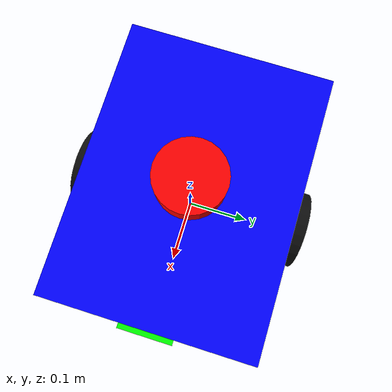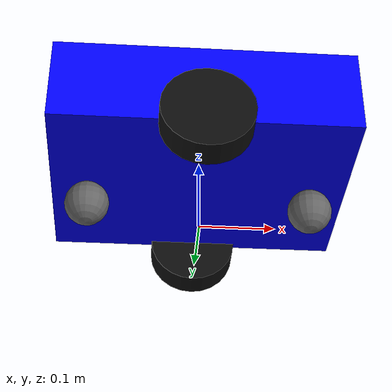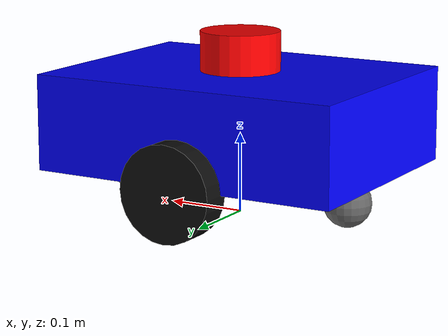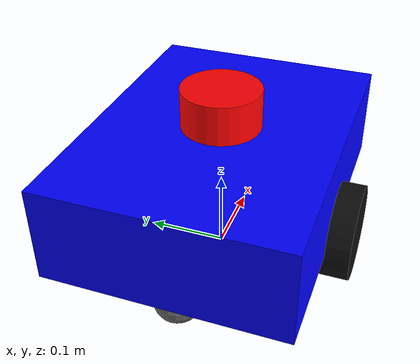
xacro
<?xml version="1.0"?>
<robot xmlns:xacro="http://www.ros.org/wiki/xacro" name="olive_bot">

  <!-- ============================ Properties ============================ -->
  <xacro:property name="chassis_length"  value="0.40"/>
  <xacro:property name="chassis_width"   value="0.30"/>
  <xacro:property name="chassis_height"  value="0.12"/>
  <xacro:property name="chassis_mass"    value="10.0"/>

  <xacro:property name="wheel_radius"    value="0.06"/>
  <xacro:property name="wheel_width"     value="0.04"/>
  <xacro:property name="wheel_mass"      value="0.5"/>
  <xacro:property name="wheel_offset_y"  value="0.16"/>   <!-- half of wheel_separation -->

  <xacro:property name="caster_radius"   value="0.03"/>
  <xacro:property name="caster_mass"     value="0.1"/>
  <xacro:property name="caster_offset_x" value="0.15"/>

  <!-- ============================ Base ============================ -->
  <!-- base_footprint sits on the ground; base_link is raised to wheel-axle height -->
  <link name="base_footprint"/>

  <joint name="base_joint" type="fixed">
    <parent link="base_footprint"/>
    <child link="base_link"/>
    <origin xyz="0 0 ${wheel_radius}" rpy="0 0 0"/>
  </joint>

  <link name="base_link">
    <visual>
      <origin xyz="0 0 ${chassis_height/2}" rpy="0 0 0"/>
      <geometry><box size="${chassis_length} ${chassis_width} ${chassis_height}"/></geometry>
      <material name="blue"><color rgba="0.0 0.0 1.0 1.0"/></material>
    </visual>
    <collision>
      <origin xyz="0 0 ${chassis_height/2}" rpy="0 0 0"/>
      <geometry><box size="${chassis_length} ${chassis_width} ${chassis_height}"/></geometry>
    </collision>
    <inertial>
      <origin xyz="0 0 ${chassis_height/2}" rpy="0 0 0"/>
      <mass value="${chassis_mass}"/>
      <inertia
        ixx="${chassis_mass/12.0*(chassis_width*chassis_width + chassis_height*chassis_height)}" ixy="0.0" ixz="0.0"
        iyy="${chassis_mass/12.0*(chassis_length*chassis_length + chassis_height*chassis_height)}" iyz="0.0"
        izz="${chassis_mass/12.0*(chassis_length*chassis_length + chassis_width*chassis_width)}"/>
    </inertial>
  </link>

  <!-- ============================ Drive wheels ============================ -->
  <xacro:macro name="drive_wheel" params="side reflect">
    <link name="${side}_wheel">
      <visual>
        <origin xyz="0 0 0" rpy="${pi/2} 0 0"/>
        <geometry><cylinder radius="${wheel_radius}" length="${wheel_width}"/></geometry>
        <material name="black"><color rgba="0.05 0.05 0.05 1.0"/></material>
      </visual>
      <collision>
        <origin xyz="0 0 0" rpy="${pi/2} 0 0"/>
        <geometry><cylinder radius="${wheel_radius}" length="${wheel_width}"/></geometry>
      </collision>
      <inertial>
        <origin xyz="0 0 0" rpy="${pi/2} 0 0"/>
        <mass value="${wheel_mass}"/>
        <inertia
          ixx="${wheel_mass/12.0*(3*wheel_radius*wheel_radius + wheel_width*wheel_width)}" ixy="0.0" ixz="0.0"
          iyy="${wheel_mass/12.0*(3*wheel_radius*wheel_radius + wheel_width*wheel_width)}" iyz="0.0"
          izz="${wheel_mass/2.0*wheel_radius*wheel_radius}"/>
      </inertial>
    </link>

    <joint name="${side}_wheel_joint" type="continuous">
      <parent link="base_link"/>
      <child link="${side}_wheel"/>
      <origin xyz="0 ${reflect*wheel_offset_y} 0" rpy="0 0 0"/>
      <axis xyz="0 1 0"/>
    </joint>
  </xacro:macro>

  <xacro:drive_wheel side="left"  reflect="1"/>
  <xacro:drive_wheel side="right" reflect="-1"/>

  <!-- ============================ Ball casters (frictionless) ============================ -->
  <xacro:macro name="caster" params="pos reflect">
    <link name="${pos}_caster">
      <visual>
        <origin xyz="0 0 0" rpy="0 0 0"/>
        <geometry><sphere radius="${caster_radius}"/></geometry>
        <material name="grey"><color rgba="0.4 0.4 0.4 1.0"/></material>
      </visual>
      <collision>
        <origin xyz="0 0 0" rpy="0 0 0"/>
        <geometry><sphere radius="${caster_radius}"/></geometry>
      </collision>
      <inertial>
        <mass value="${caster_mass}"/>
        <inertia ixx="${0.4*caster_mass*caster_radius*caster_radius}" ixy="0.0" ixz="0.0"
                 iyy="${0.4*caster_mass*caster_radius*caster_radius}" iyz="0.0"
                 izz="${0.4*caster_mass*caster_radius*caster_radius}"/>
      </inertial>
    </link>

    <joint name="${pos}_caster_joint" type="fixed">
      <parent link="base_link"/>
      <child link="${pos}_caster"/>
      <origin xyz="${reflect*caster_offset_x} 0 ${-(wheel_radius - caster_radius)}" rpy="0 0 0"/>
    </joint>
  </xacro:macro>

  <xacro:caster pos="front" reflect="1"/>
  <xacro:caster pos="rear"  reflect="-1"/>

  <!-- ============================ Sensor links ============================ -->
  <!-- IMU -->
  <link name="imu_link">
    <inertial>
      <mass value="0.01"/>
      <origin xyz="0 0 0" rpy="0 0 0"/>
      <inertia ixx="0.00001" ixy="0.0" ixz="0.0" iyy="0.00001" iyz="0.0" izz="0.00001"/>
    </inertial>
  </link>
  <joint name="imu_joint" type="fixed">
    <parent link="base_link"/>
    <child link="imu_link"/>
    <origin xyz="0 0 ${chassis_height/2}" rpy="0 0 0"/>
  </joint>

  <!-- 3D LiDAR (roof-mounted) -->
  <link name="lidar_link">
    <visual>
      <origin xyz="0 0 0" rpy="0 0 0"/>
      <geometry><cylinder radius="0.05" length="0.05"/></geometry>
      <material name="red"><color rgba="1.0 0.0 0.0 1.0"/></material>
    </visual>
    <collision>
      <origin xyz="0 0 0" rpy="0 0 0"/>
      <geometry><cylinder radius="0.05" length="0.05"/></geometry>
    </collision>
    <inertial>
      <mass value="0.1"/>
      <origin xyz="0 0 0" rpy="0 0 0"/>
      <inertia ixx="0.0001" ixy="0.0" ixz="0.0" iyy="0.0001" iyz="0.0" izz="0.0001"/>
    </inertial>
  </link>
  <joint name="lidar_joint" type="fixed">
    <parent link="base_link"/>
    <child link="lidar_link"/>
    <origin xyz="0 0 ${chassis_height + 0.025}" rpy="0 0 0"/>
  </joint>

  <!-- RGB camera (front-facing) -->
  <link name="camera_link">
    <visual>
      <origin xyz="0 0 0" rpy="0 0 0"/>
      <geometry><box size="0.03 0.08 0.03"/></geometry>
      <material name="green"><color rgba="0.0 1.0 0.0 1.0"/></material>
    </visual>
    <collision>
      <origin xyz="0 0 0" rpy="0 0 0"/>
      <geometry><box size="0.03 0.08 0.03"/></geometry>
    </collision>
    <inertial>
      <mass value="0.05"/>
      <origin xyz="0 0 0" rpy="0 0 0"/>
      <inertia ixx="0.00001" ixy="0.0" ixz="0.0" iyy="0.00001" iyz="0.0" izz="0.00001"/>
    </inertial>
  </link>
  <joint name="camera_joint" type="fixed">
    <parent link="base_link"/>
    <child link="camera_link"/>
    <origin xyz="${chassis_length/2} 0 ${chassis_height/2}" rpy="0 0 0"/>
  </joint>

  <!-- Camera optical frame (REP-103 optical convention: z forward, x right, y down) -->
  <link name="camera_optical_link"/>
  <joint name="camera_optical_joint" type="fixed">
    <parent link="camera_link"/>
    <child link="camera_optical_link"/>
    <origin xyz="0 0 0" rpy="${-pi/2} 0 ${-pi/2}"/>
  </joint>

  <!-- ===================== GAZEBO (HARMONIC) MATERIALS & FRICTION ===================== -->
  <gazebo reference="base_link">
    <material>
      <ambient>0.0 0.0 1.0 1.0</ambient>
      <diffuse>0.0 0.0 1.0 1.0</diffuse>
      <specular>0.1 0.1 0.1 1.0</specular>
    </material>
  </gazebo>

  <gazebo reference="left_wheel">
    <material><ambient>0.05 0.05 0.05 1.0</ambient><diffuse>0.05 0.05 0.05 1.0</diffuse></material>
    <mu1>1.0</mu1>
    <mu2>1.0</mu2>
  </gazebo>
  <gazebo reference="right_wheel">
    <material><ambient>0.05 0.05 0.05 1.0</ambient><diffuse>0.05 0.05 0.05 1.0</diffuse></material>
    <mu1>1.0</mu1>
    <mu2>1.0</mu2>
  </gazebo>

  <!-- Frictionless casters: they support the chassis without dragging/slipping the odometry -->
  <gazebo reference="front_caster">
    <material><ambient>0.4 0.4 0.4 1.0</ambient><diffuse>0.4 0.4 0.4 1.0</diffuse></material>
    <mu1>0.0</mu1>
    <mu2>0.0</mu2>
  </gazebo>
  <gazebo reference="rear_caster">
    <material><ambient>0.4 0.4 0.4 1.0</ambient><diffuse>0.4 0.4 0.4 1.0</diffuse></material>
    <mu1>0.0</mu1>
    <mu2>0.0</mu2>
  </gazebo>

  <gazebo reference="lidar_link">
    <material><ambient>1.0 0.0 0.0 1.0</ambient><diffuse>1.0 0.0 0.0 1.0</diffuse></material>
  </gazebo>
  <gazebo reference="camera_link">
    <material><ambient>0.0 1.0 0.0 1.0</ambient><diffuse>0.0 1.0 0.0 1.0</diffuse></material>
  </gazebo>

  <!-- ===================== GAZEBO (HARMONIC) SYSTEM PLUGINS ===================== -->
  <gazebo>
    <!-- Differential drive: exactly two driven wheels + wheel odometry -->
    <plugin filename="gz-sim-diff-drive-system" name="gz::sim::systems::DiffDrive">
      <left_joint>left_wheel_joint</left_joint>
      <right_joint>right_wheel_joint</right_joint>
      <wheel_separation>${2*wheel_offset_y}</wheel_separation>
      <wheel_radius>${wheel_radius}</wheel_radius>
      <odom_publish_frequency>50</odom_publish_frequency>
      <max_linear_acceleration>1.0</max_linear_acceleration>
      <min_linear_acceleration>-1.0</min_linear_acceleration>
      <max_angular_acceleration>2.0</max_angular_acceleration>
      <min_angular_acceleration>-2.0</min_angular_acceleration>
      <max_linear_velocity>0.6</max_linear_velocity>
      <min_linear_velocity>-0.6</min_linear_velocity>
      <max_angular_velocity>1.2</max_angular_velocity>
      <min_angular_velocity>-1.2</min_angular_velocity>
      <topic>cmd_vel</topic>
      <odom_topic>odom</odom_topic>
      <frame_id>odom</frame_id>
      <child_frame_id>base_footprint</child_frame_id>
    </plugin>

    <!-- Joint states for the two wheels -->
    <plugin filename="gz-sim-joint-state-publisher-system" name="gz::sim::systems::JointStatePublisher">
      <topic>joint_states</topic>
      <joint_name>left_wheel_joint</joint_name>
      <joint_name>right_wheel_joint</joint_name>
    </plugin>

    <!-- IMU system (drives the imu sensor below) -->
    <plugin filename="gz-sim-imu-system" name="gz::sim::systems::Imu"/>

    <plugin filename="gz-sim-odometry-publisher-system" name="gz::sim::systems::OdometryPublisher">
      <odom_frame>map</odom_frame>
      <robot_base_frame>base_link</robot_base_frame>
      <odom_topic>/ground_truth</odom_topic>
      <dimensions>3</dimensions>
      <odom_publish_frequency>30</odom_publish_frequency>
    </plugin>
  </gazebo>

  <!-- ===================== GAZEBO (HARMONIC) SENSORS ===================== -->
  <!-- IMU sensor @ 100 Hz -->
  <gazebo reference="imu_link">
    <sensor name="imu_sensor" type="imu">
      <always_on>true</always_on>
      <update_rate>100</update_rate>
      <visualize>true</visualize>
      <topic>imu/data</topic>
      <gz_frame_id>imu_link</gz_frame_id>
      <enable_metrics>false</enable_metrics>
      <imu>
        <angular_velocity>
          <x><noise type="gaussian"><mean>0.0</mean><stddev>2e-4</stddev></noise></x>
          <y><noise type="gaussian"><mean>0.0</mean><stddev>2e-4</stddev></noise></y>
          <z><noise type="gaussian"><mean>0.0</mean><stddev>2e-4</stddev></noise></z>
        </angular_velocity>
        <linear_acceleration>
          <x><noise type="gaussian"><mean>0.0</mean><stddev>1.7e-2</stddev></noise></x>
          <y><noise type="gaussian"><mean>0.0</mean><stddev>1.7e-2</stddev></noise></y>
          <z><noise type="gaussian"><mean>0.0</mean><stddev>1.7e-2</stddev></noise></z>
        </linear_acceleration>
      </imu>
    </sensor>
  </gazebo>

  <!-- 3D GPU LiDAR: 16 beams @ 10 Hz, 10 m range -->
  <gazebo reference="lidar_link">
    <sensor name="lidar_sensor" type="gpu_lidar">
      <always_on>true</always_on>
      <update_rate>10</update_rate>
      <visualize>true</visualize>
      <topic>lidar/points</topic>
      <gz_frame_id>lidar_link</gz_frame_id>
      <enable_metrics>false</enable_metrics>
      <lidar>
        <scan>
          <horizontal>
            <samples>360</samples>
            <resolution>1</resolution>
            <min_angle>-3.141592653589793</min_angle>
            <max_angle>3.141592653589793</max_angle>
          </horizontal>
          <vertical>
            <samples>16</samples>
            <resolution>1</resolution>
            <min_angle>-0.261799</min_angle>
            <max_angle>0.261799</max_angle>
          </vertical>
        </scan>
        <range>
          <min>0.3</min>
          <max>10.0</max>
          <resolution>0.01</resolution>
        </range>
        <noise>
          <type>gaussian</type>
          <mean>0.0</mean>
          <stddev>0.01</stddev>
        </noise>
      </lidar>
    </sensor>
  </gazebo>

  <!-- RGB camera: 640x480 @ 30 Hz -->
  <gazebo reference="camera_link">
    <sensor name="camera_sensor" type="camera">
      <always_on>true</always_on>
      <update_rate>30</update_rate>
      <visualize>true</visualize>
      <topic>camera/image_raw</topic>
      <gz_frame_id>camera_optical_link</gz_frame_id>
      <enable_metrics>false</enable_metrics>
      <camera>
        <horizontal_fov>1.3962634</horizontal_fov>
        <image>
          <width>640</width>
          <height>480</height>
          <format>R8G8B8</format>
        </image>
        <clip>
          <near>0.02</near>
          <far>300</far>
        </clip>
        <noise>
          <type>gaussian</type>
          <mean>0.0</mean>
          <stddev>0.007</stddev>
        </noise>
        <optical_frame_id>camera_optical_link</optical_frame_id>
      </camera>
    </sensor>
  </gazebo>

</robot>
